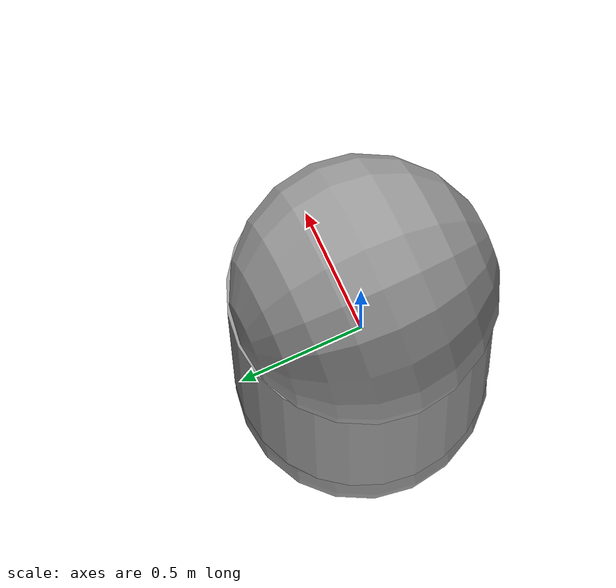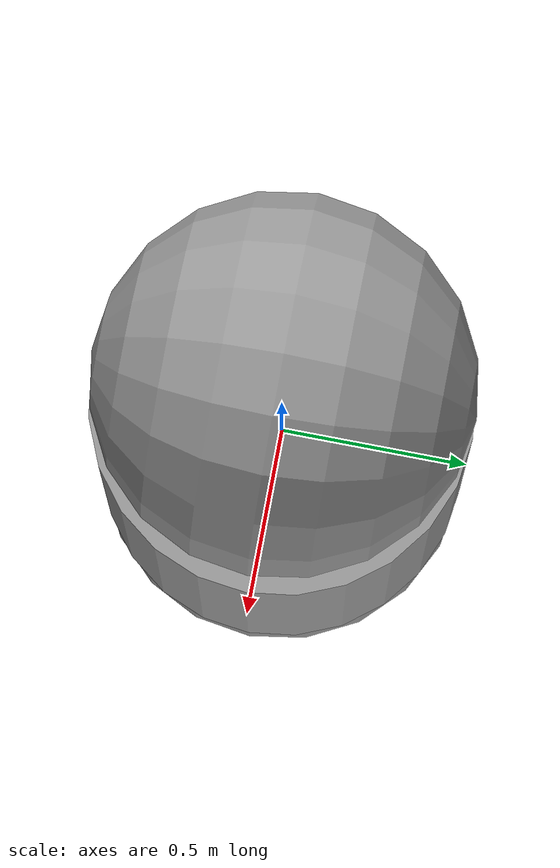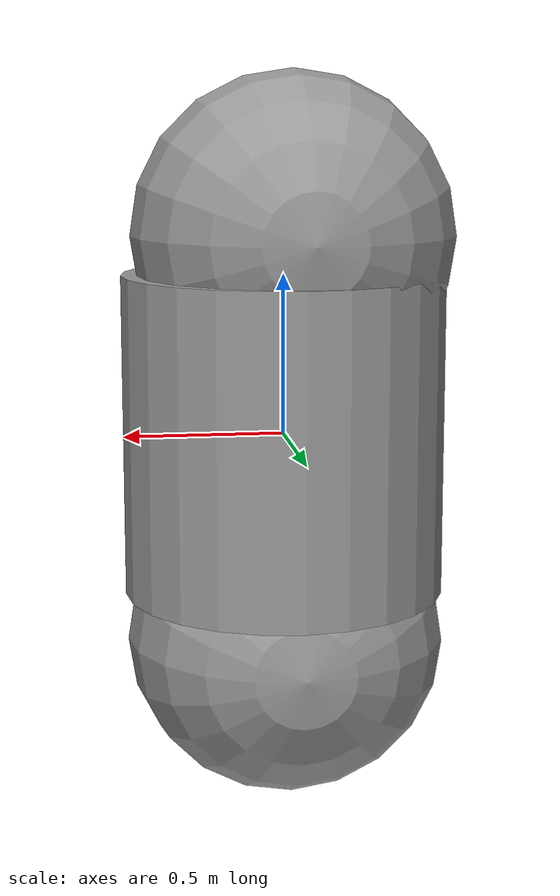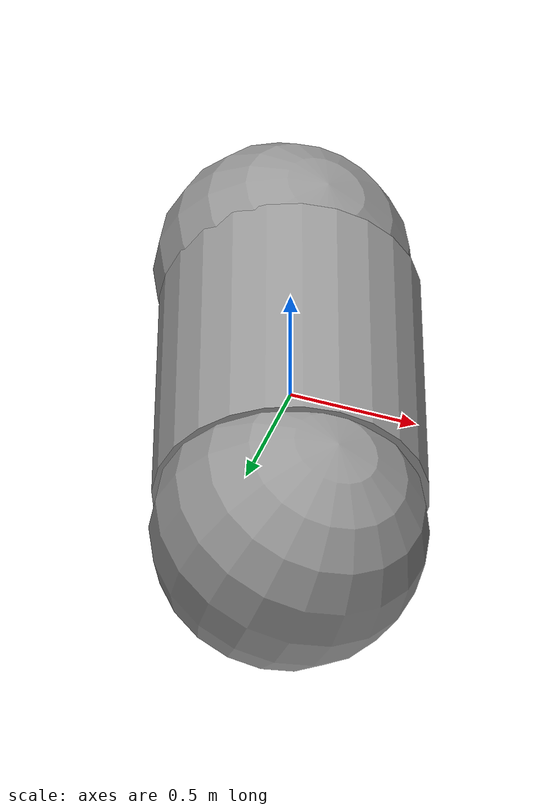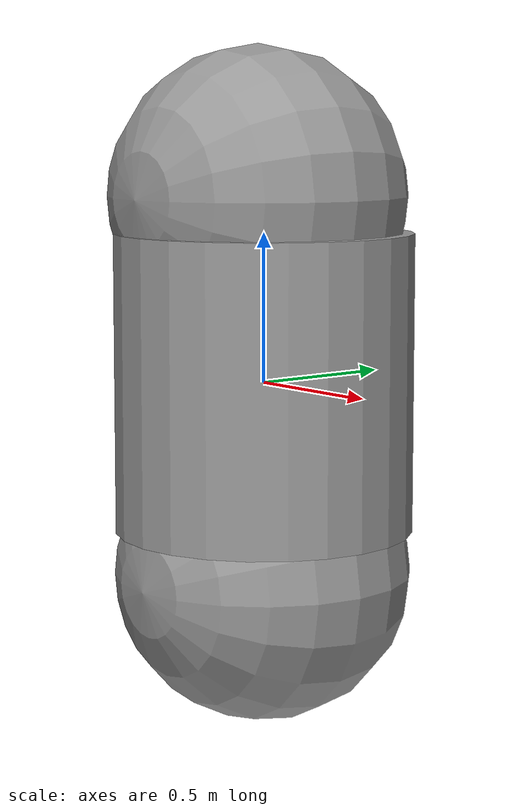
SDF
<?xml version='1.0'?>
<sdf version='1.7'>
  <model name='unit_cylinder'>
    <link name='link'>
      <inertial>
        <mass>1</mass>
        <inertia>
          <ixx>0.145833</ixx>
          <ixy>0</ixy>
          <ixz>0</ixz>
          <iyy>0.145833</iyy>
          <iyz>0</iyz>
          <izz>0.125</izz>
        </inertia>
        <pose>0 0 0 0 -0 0</pose>
      </inertial>
      <self_collide>0</self_collide>
      <enable_wind>0</enable_wind>
      <kinematic>0</kinematic>
      <pose>0 0 0 0 -0 0</pose>
      <visual name='visual'>
        <geometry>
          <cylinder>
            <radius>0.5</radius>
            <length>1</length>
          </cylinder>
        </geometry>
        <material>
          <script>
            <name>Gazebo/Grey</name>
            <uri>file://media/materials/scripts/gazebo.material</uri>
          </script>
          <shader type='pixel'/>
        </material>
        <pose>0 0 0 0 -0 0</pose>
        <transparency>0</transparency>
        <cast_shadows>1</cast_shadows>
      </visual>
      <collision name='collision'>
        <laser_retro>0</laser_retro>
        <max_contacts>10</max_contacts>
        <pose>0 0 0 0 -0 0</pose>
        <geometry>
          <cylinder>
            <radius>0.5</radius>
            <length>1</length>
          </cylinder>
        </geometry>
        <surface>
          <friction>
            <ode>
              <mu>1</mu>
              <mu2>1</mu2>
              <fdir1>0 0 0</fdir1>
              <slip1>0</slip1>
              <slip2>0</slip2>
            </ode>
            <torsional>
              <coefficient>1</coefficient>
              <patch_radius>0</patch_radius>
              <surface_radius>0</surface_radius>
              <use_patch_radius>1</use_patch_radius>
              <ode>
                <slip>0</slip>
              </ode>
            </torsional>
          </friction>
          <bounce>
            <restitution_coefficient>0</restitution_coefficient>
            <threshold>1e+06</threshold>
          </bounce>
          <contact>
            <collide_without_contact>0</collide_without_contact>
            <collide_without_contact_bitmask>1</collide_without_contact_bitmask>
            <collide_bitmask>1</collide_bitmask>
            <ode>
              <soft_cfm>0</soft_cfm>
              <soft_erp>0.2</soft_erp>
              <kp>1e+13</kp>
              <kd>1</kd>
              <max_vel>0.01</max_vel>
              <min_depth>0</min_depth>
            </ode>
            <bullet>
              <split_impulse>1</split_impulse>
              <split_impulse_penetration_threshold>-0.01</split_impulse_penetration_threshold>
              <soft_cfm>0</soft_cfm>
              <soft_erp>0.2</soft_erp>
              <kp>1e+13</kp>
              <kd>1</kd>
            </bullet>
          </contact>
        </surface>
      </collision>
    </link>
    <link name='link_3'>
      <inertial>
        <mass>1</mass>
        <inertia>
          <ixx>0.1</ixx>
          <ixy>0</ixy>
          <ixz>0</ixz>
          <iyy>0.1</iyy>
          <iyz>0</iyz>
          <izz>0.1</izz>
        </inertia>
      </inertial>
      <pose>-0.029853 -0.00034 0.620109 1.57135 -0 0</pose>
      <visual name='visual'>
        <pose>0 0 0 0 -0 0</pose>
        <geometry>
          <sphere>
            <radius>0.5</radius>
          </sphere>
        </geometry>
        <material>
          <lighting>1</lighting>
          <script>
            <uri>file://media/materials/scripts/gazebo.material</uri>
            <name>Gazebo/Grey</name>
          </script>
          <shader type='pixel'/>
        </material>
        <transparency>0</transparency>
        <cast_shadows>1</cast_shadows>
      </visual>
      <collision name='collision'>
        <laser_retro>0</laser_retro>
        <max_contacts>10</max_contacts>
        <pose>0 0 0 0 -0 0</pose>
        <geometry>
          <sphere>
            <radius>0.5</radius>
          </sphere>
        </geometry>
        <surface>
          <friction>
            <ode>
              <mu>1</mu>
              <mu2>1</mu2>
              <fdir1>0 0 0</fdir1>
              <slip1>0</slip1>
              <slip2>0</slip2>
            </ode>
            <torsional>
              <coefficient>1</coefficient>
              <patch_radius>0</patch_radius>
              <surface_radius>0</surface_radius>
              <use_patch_radius>1</use_patch_radius>
              <ode>
                <slip>0</slip>
              </ode>
            </torsional>
          </friction>
          <bounce>
            <restitution_coefficient>0</restitution_coefficient>
            <threshold>1e+06</threshold>
          </bounce>
          <contact>
            <collide_without_contact>0</collide_without_contact>
            <collide_without_contact_bitmask>1</collide_without_contact_bitmask>
            <collide_bitmask>1</collide_bitmask>
            <ode>
              <soft_cfm>0</soft_cfm>
              <soft_erp>0.2</soft_erp>
              <kp>1e+13</kp>
              <kd>1</kd>
              <max_vel>0.01</max_vel>
              <min_depth>0</min_depth>
            </ode>
            <bullet>
              <split_impulse>1</split_impulse>
              <split_impulse_penetration_threshold>-0.01</split_impulse_penetration_threshold>
              <soft_cfm>0</soft_cfm>
              <soft_erp>0.2</soft_erp>
              <kp>1e+13</kp>
              <kd>1</kd>
            </bullet>
          </contact>
        </surface>
      </collision>
    </link>
    <link name='link_4'>
      <inertial>
        <mass>1</mass>
        <inertia>
          <ixx>0.1</ixx>
          <ixy>0</ixy>
          <ixz>0</ixz>
          <iyy>0.1</iyy>
          <iyz>0</iyz>
          <izz>0.1</izz>
        </inertia>
      </inertial>
      <pose>-0.00542 0.000336 -0.647012 1.57135 -0 0</pose>
      <visual name='visual'>
        <pose>0 0 0 0 -0 0</pose>
        <geometry>
          <sphere>
            <radius>0.5</radius>
          </sphere>
        </geometry>
        <material>
          <lighting>1</lighting>
          <script>
            <uri>file://media/materials/scripts/gazebo.material</uri>
            <name>Gazebo/Grey</name>
          </script>
          <shader type='pixel'/>
        </material>
        <transparency>0</transparency>
        <cast_shadows>1</cast_shadows>
      </visual>
      <collision name='collision'>
        <laser_retro>0</laser_retro>
        <max_contacts>10</max_contacts>
        <pose>0 0 0 0 -0 0</pose>
        <geometry>
          <sphere>
            <radius>0.5</radius>
          </sphere>
        </geometry>
        <surface>
          <friction>
            <ode>
              <mu>1</mu>
              <mu2>1</mu2>
              <fdir1>0 0 0</fdir1>
              <slip1>0</slip1>
              <slip2>0</slip2>
            </ode>
            <torsional>
              <coefficient>1</coefficient>
              <patch_radius>0</patch_radius>
              <surface_radius>0</surface_radius>
              <use_patch_radius>1</use_patch_radius>
              <ode>
                <slip>0</slip>
              </ode>
            </torsional>
          </friction>
          <bounce>
            <restitution_coefficient>0</restitution_coefficient>
            <threshold>1e+06</threshold>
          </bounce>
          <contact>
            <collide_without_contact>0</collide_without_contact>
            <collide_without_contact_bitmask>1</collide_without_contact_bitmask>
            <collide_bitmask>1</collide_bitmask>
            <ode>
              <soft_cfm>0</soft_cfm>
              <soft_erp>0.2</soft_erp>
              <kp>1e+13</kp>
              <kd>1</kd>
              <max_vel>0.01</max_vel>
              <min_depth>0</min_depth>
            </ode>
            <bullet>
              <split_impulse>1</split_impulse>
              <split_impulse_penetration_threshold>-0.01</split_impulse_penetration_threshold>
              <soft_cfm>0</soft_cfm>
              <soft_erp>0.2</soft_erp>
              <kp>1e+13</kp>
              <kd>1</kd>
            </bullet>
          </contact>
        </surface>
      </collision>
    </link>
    <static>0</static>
    <allow_auto_disable>1</allow_auto_disable>
  </model>
</sdf>
